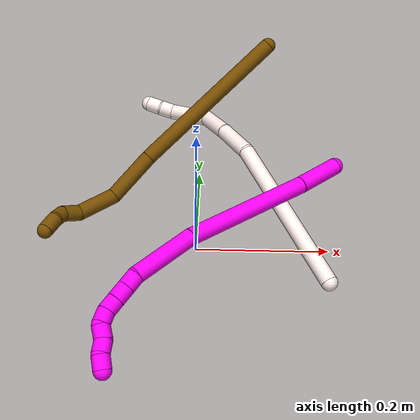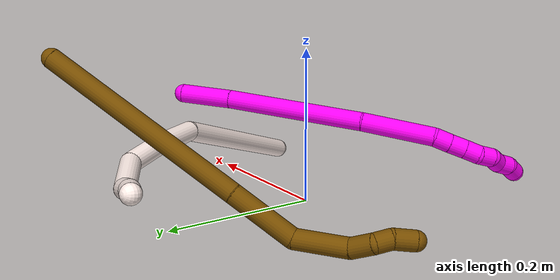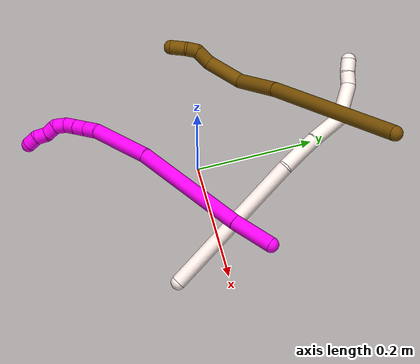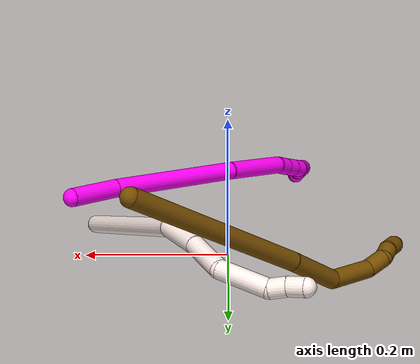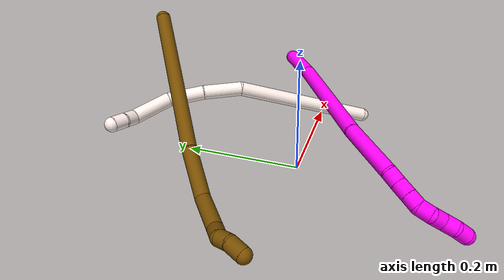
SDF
<sdf version="1.7">
 <world name="default">
  <model name="photoneo_s_sensor">
   <static>1</static>
   <pose>0 0 2 1.57079 1.57079 3.14159</pose>
   <link name="link">
    <inertial><mass>0.1</mass></inertial>
    <sensor name="sensor" type="depth">
     <update_rate>30</update_rate>
     <camera>
      <horizontal_fov>1.22</horizontal_fov>
      <image><width>1920</width><height>1200</height><format>B8G8R8</format></image>
      <clip><near>0.1</near><far>4</far></clip>
      <depth_camera><output>points</output></depth_camera>
     </camera>
     <plugin name="camera_plugin" filename="libgazebo_ros_depth_camera.so">
      <baseline>0.2</baseline>
      <alwaysOn>1</alwaysOn>
      <updateRate>0.0</updateRate>
      <cameraName>camera_ir</cameraName>
      <imageTopicName>/camera/color/image_raw</imageTopicName>
      <cameraInfoTopicName>/camera/color/camera_info</cameraInfoTopicName>
      <depthImageTopicName>/camera/depth/image_raw</depthImageTopicName>
      <depthImageCameraInfoTopicName>/camera/depth/camera_info</depthImageCameraInfoTopicName>
      <pointCloudTopicName>/camera/depth/points</pointCloudTopicName>
      <frameName>fr_optical</frameName>
      <pointCloudCutoff>0.1</pointCloudCutoff>
      <pointCloudCutoffMax>2.0</pointCloudCutoffMax>
      <distortionK1>0</distortionK1>
      <distortionK2>0</distortionK2>
      <distortionK3>0</distortionK3>
      <distortionT1>0</distortionT1>
      <distortionT2>0</distortionT2>
      <CxPrime>0</CxPrime>
      <Cx>0</Cx>
      <Cy>0</Cy>
      <focalLength>0</focalLength>
      <hackBaseline>0</hackBaseline>
     </plugin>
    </sensor>
   </link>
  </model>
  <model name="bin">
   <static>1</static>
   <link name="bottom">
    <collision name="collision-bottom">
     <pose>0 0 -0.01 0 -0 0</pose>
     <geometry><box><size>0.8 0.6 0.02</size></box></geometry>
     <surface>
      <friction><ode><mu>100</mu><mu2>100</mu2></ode></friction>
      <contact><collide_bitmask>65535</collide_bitmask></contact>
     </surface>
    </collision>
   </link>
   <link name="west_wall">
    <collision name="collision-west_wall">
     <pose>-0.41 0 0.1 0 -0 0</pose>
     <geometry><box><size>0.02 0.6 0.2</size></box></geometry>
     <surface>
      <friction><ode><mu>100</mu><mu2>100</mu2></ode></friction>
      <contact><collide_bitmask>65535</collide_bitmask></contact>
     </surface>
    </collision>
   </link>
   <link name="east_wall">
    <collision name="collision-east_wall">
     <pose>0.41 0 0.1 0 -0 0</pose>
     <geometry><box><size>0.02 0.6 0.2</size></box></geometry>
     <surface>
      <friction><ode><mu>100</mu><mu2>100</mu2></ode></friction>
      <contact><collide_bitmask>65535</collide_bitmask></contact>
     </surface>
    </collision>
   </link>
   <link name="south_wall">
    <collision name="collision-south_wall">
     <pose>0 -0.31 0.1 0 -0 0</pose>
     <geometry><box><size>0.8 0.02 0.2</size></box></geometry>
     <surface>
      <friction><ode><mu>100</mu><mu2>100</mu2></ode></friction>
      <contact><collide_bitmask>65535</collide_bitmask></contact>
     </surface>
    </collision>
   </link>
   <link name="north_wall">
    <collision name="collision-north_wall">
     <pose>0 0.31 0.1 0 -0 0</pose>
     <geometry><box><size>0.8 0.02 0.2</size></box></geometry>
     <surface>
      <friction><ode><mu>100</mu><mu2>100</mu2></ode></friction>
      <contact><collide_bitmask>65535</collide_bitmask></contact>
     </surface>
    </collision>
   </link>
  </model>
  <model name="10">
   <static>0</static>
   <link name="10">
    <collision name="collision-cylinder-e_1_1_4">
     <pose>-0.028111 -0.015146 -0.013805 2.3099 -0.940873 -1.71143</pose>
     <geometry><cylinder><radius>0.0125</radius><length>0.069576</length></cylinder></geometry>
     <surface>
      <friction><ode><mu>1.16</mu><mu2>1.16</mu2><slip1>0</slip1><slip2>0</slip2></ode></friction>
      <contact><ode><kp>1e+06</kp><kd>1</kd><max_vel>0</max_vel><min_depth>0.001</min_depth></ode></contact>
     </surface>
    </collision>
    <visual name="visual-cylinder-e_1_1_4">
     <pose>-0.028111 -0.015146 -0.013805 2.3099 -0.940873 -1.71143</pose>
     <geometry><cylinder><radius>0.0125</radius><length>0.069576</length></cylinder></geometry>
     <material><ambient>1 0 0.964706 1</ambient></material>
    </visual>
    <collision name="collision-cylinder-e_2_4_5">
     <pose>-0.138222 -0.066137 -0.060886 2.31904 -1.03297 -1.83176</pose>
     <geometry><cylinder><radius>0.0125</radius><length>0.190958</length></cylinder></geometry>
     <surface>
      <friction><ode><mu>1.16</mu><mu2>1.16</mu2><slip1>0</slip1><slip2>0</slip2></ode></friction>
      <contact><ode><kp>1e+06</kp><kd>1</kd><max_vel>0</max_vel><min_depth>0.001</min_depth></ode></contact>
     </surface>
    </collision>
    <visual name="visual-cylinder-e_2_4_5">
     <pose>-0.138222 -0.066137 -0.060886 2.31904 -1.03297 -1.83176</pose>
     <geometry><cylinder><radius>0.0125</radius><length>0.190958</length></cylinder></geometry>
     <material><ambient>1 0 0.964706 1</ambient></material>
    </visual>
    <collision name="collision-cylinder-e_3_5_6">
     <pose>-0.25803 -0.120661 -0.117835 2.47358 -0.89755 -1.89273</pose>
     <geometry><cylinder><radius>0.0125</radius><length>0.09672</length></cylinder></geometry>
     <surface>
      <friction><ode><mu>1.16</mu><mu2>1.16</mu2><slip1>0</slip1><slip2>0</slip2></ode></friction>
      <contact><ode><kp>1e+06</kp><kd>1</kd><max_vel>0</max_vel><min_depth>0.001</min_depth></ode></contact>
     </surface>
    </collision>
    <visual name="visual-cylinder-e_3_5_6">
     <pose>-0.25803 -0.120661 -0.117835 2.47358 -0.89755 -1.89273</pose>
     <geometry><cylinder><radius>0.0125</radius><length>0.09672</length></cylinder></geometry>
     <material><ambient>1 0 0.964706 1</ambient></material>
    </visual>
    <collision name="collision-cylinder-e_4_6_7">
     <pose>-0.3029 -0.142056 -0.149018 2.79453 -0.724007 -2.27454</pose>
     <geometry><cylinder><radius>0.0125</radius><length>0.021323</length></cylinder></geometry>
     <surface>
      <friction><ode><mu>1.16</mu><mu2>1.16</mu2><slip1>0</slip1><slip2>0</slip2></ode></friction>
      <contact><ode><kp>1e+06</kp><kd>1</kd><max_vel>0</max_vel><min_depth>0.001</min_depth></ode></contact>
     </surface>
    </collision>
    <visual name="visual-cylinder-e_4_6_7">
     <pose>-0.3029 -0.142056 -0.149018 2.79453 -0.724007 -2.27454</pose>
     <geometry><cylinder><radius>0.0125</radius><length>0.021323</length></cylinder></geometry>
     <material><ambient>1 0 0.964706 1</ambient></material>
    </visual>
    <collision name="collision-cylinder-e_5_7_8">
     <pose>-0.317003 -0.147809 -0.163941 2.75287 -0.721101 -2.17925</pose>
     <geometry><cylinder><radius>0.0125</radius><length>0.021329</length></cylinder></geometry>
     <surface>
      <friction><ode><mu>1.16</mu><mu2>1.16</mu2><slip1>0</slip1><slip2>0</slip2></ode></friction>
      <contact><ode><kp>1e+06</kp><kd>1</kd><max_vel>0</max_vel><min_depth>0.001</min_depth></ode></contact>
     </surface>
    </collision>
    <visual name="visual-cylinder-e_5_7_8">
     <pose>-0.317003 -0.147809 -0.163941 2.75287 -0.721101 -2.17925</pose>
     <geometry><cylinder><radius>0.0125</radius><length>0.021329</length></cylinder></geometry>
     <material><ambient>1 0 0.964706 1</ambient></material>
    </visual>
    <collision name="collision-cylinder-e_6_8_9">
     <pose>-0.33063 -0.153542 -0.178409 2.77636 -0.717169 -2.22594</pose>
     <geometry><cylinder><radius>0.0125</radius><length>0.020043</length></cylinder></geometry>
     <surface>
      <friction><ode><mu>1.16</mu><mu2>1.16</mu2><slip1>0</slip1><slip2>0</slip2></ode></friction>
      <contact><ode><kp>1e+06</kp><kd>1</kd><max_vel>0</max_vel><min_depth>0.001</min_depth></ode></contact>
     </surface>
    </collision>
    <visual name="visual-cylinder-e_6_8_9">
     <pose>-0.33063 -0.153542 -0.178409 2.77636 -0.717169 -2.22594</pose>
     <geometry><cylinder><radius>0.0125</radius><length>0.020043</length></cylinder></geometry>
     <material><ambient>1 0 0.964706 1</ambient></material>
    </visual>
    <collision name="collision-cylinder-e_7_9_10">
     <pose>-0.340739 -0.160681 -0.193731 2.64866 -0.358974 -1.24962</pose>
     <geometry><cylinder><radius>0.0125</radius><length>0.020047</length></cylinder></geometry>
     <surface>
      <friction><ode><mu>1.16</mu><mu2>1.16</mu2><slip1>0</slip1><slip2>0</slip2></ode></friction>
      <contact><ode><kp>1e+06</kp><kd>1</kd><max_vel>0</max_vel><min_depth>0.001</min_depth></ode></contact>
     </surface>
    </collision>
    <visual name="visual-cylinder-e_7_9_10">
     <pose>-0.340739 -0.160681 -0.193731 2.64866 -0.358974 -1.24962</pose>
     <geometry><cylinder><radius>0.0125</radius><length>0.020047</length></cylinder></geometry>
     <material><ambient>1 0 0.964706 1</ambient></material>
    </visual>
    <collision name="collision-cylinder-e_8_10_11">
     <pose>-0.343001 -0.166483 -0.211826 3.00394 0.126253 1.48418</pose>
     <geometry><cylinder><radius>0.0125</radius><length>0.020002</length></cylinder></geometry>
     <surface>
      <friction><ode><mu>1.16</mu><mu2>1.16</mu2><slip1>0</slip1><slip2>0</slip2></ode></friction>
      <contact><ode><kp>1e+06</kp><kd>1</kd><max_vel>0</max_vel><min_depth>0.001</min_depth></ode></contact>
     </surface>
    </collision>
    <visual name="visual-cylinder-e_8_10_11">
     <pose>-0.343001 -0.166483 -0.211826 3.00394 0.126253 1.48418</pose>
     <geometry><cylinder><radius>0.0125</radius><length>0.020002</length></cylinder></geometry>
     <material><ambient>1 0 0.964706 1</ambient></material>
    </visual>
    <collision name="collision-cylinder-e_9_11_12">
     <pose>-0.343803 -0.171923 -0.230549 2.71168 -0.207617 -0.890463</pose>
     <geometry><cylinder><radius>0.0125</radius><length>0.020001</length></cylinder></geometry>
     <surface>
      <friction><ode><mu>1.16</mu><mu2>1.16</mu2><slip1>0</slip1><slip2>0</slip2></ode></friction>
      <contact><ode><kp>1e+06</kp><kd>1</kd><max_vel>0</max_vel><min_depth>0.001</min_depth></ode></contact>
     </surface>
    </collision>
    <visual name="visual-cylinder-e_9_11_12">
     <pose>-0.343803 -0.171923 -0.230549 2.71168 -0.207617 -0.890463</pose>
     <geometry><cylinder><radius>0.0125</radius><length>0.020001</length></cylinder></geometry>
     <material><ambient>1 0 0.964706 1</ambient></material>
    </visual>
    <collision name="collision-cylinder-e_10_12_2">
     <pose>-0.345312 -0.176977 -0.249381 3.04374 0.05525 1.02751</pose>
     <geometry><cylinder><radius>0.0125</radius><length>0.02</length></cylinder></geometry>
     <surface>
      <friction><ode><mu>1.16</mu><mu2>1.16</mu2><slip1>0</slip1><slip2>0</slip2></ode></friction>
      <contact><ode><kp>1e+06</kp><kd>1</kd><max_vel>0</max_vel><min_depth>0.001</min_depth></ode></contact>
     </surface>
    </collision>
    <visual name="visual-cylinder-e_10_12_2">
     <pose>-0.345312 -0.176977 -0.249381 3.04374 0.05525 1.02751</pose>
     <geometry><cylinder><radius>0.0125</radius><length>0.02</length></cylinder></geometry>
     <material><ambient>1 0 0.964706 1</ambient></material>
    </visual>
    <collision name="collision-sphere-2">
     <pose>-0.34476 -0.177953 -0.259318 0 -0 0</pose>
     <geometry><sphere><radius>0.0125</radius></sphere></geometry>
     <surface>
      <friction><ode><mu>1.16</mu><mu2>1.16</mu2><slip1>0</slip1><slip2>0</slip2></ode></friction>
      <contact><ode><kp>1e+06</kp><kd>1</kd><max_vel>0</max_vel><min_depth>0.001</min_depth></ode></contact>
     </surface>
    </collision>
    <visual name="visual-sphere-2">
     <pose>-0.34476 -0.177953 -0.259318 0 -0 0</pose>
     <geometry><sphere><radius>0.0125</radius></sphere></geometry>
     <material><ambient>1 0 0.964706 1</ambient></material>
    </visual>
    <collision name="collision-sphere-12">
     <pose>-0.345864 -0.176002 -0.239444 0 -0 0</pose>
     <geometry><sphere><radius>0.0125</radius></sphere></geometry>
     <surface>
      <friction><ode><mu>1.16</mu><mu2>1.16</mu2><slip1>0</slip1><slip2>0</slip2></ode></friction>
      <contact><ode><kp>1e+06</kp><kd>1</kd><max_vel>0</max_vel><min_depth>0.001</min_depth></ode></contact>
     </surface>
    </collision>
    <visual name="visual-sphere-12">
     <pose>-0.345864 -0.176002 -0.239444 0 -0 0</pose>
     <geometry><sphere><radius>0.0125</radius></sphere></geometry>
     <material><ambient>1 0 0.964706 1</ambient></material>
    </visual>
    <collision name="collision-sphere-11">
     <pose>-0.341741 -0.167845 -0.221654 0 -0 0</pose>
     <geometry><sphere><radius>0.0125</radius></sphere></geometry>
     <surface>
      <friction><ode><mu>1.16</mu><mu2>1.16</mu2><slip1>0</slip1><slip2>0</slip2></ode></friction>
      <contact><ode><kp>1e+06</kp><kd>1</kd><max_vel>0</max_vel><min_depth>0.001</min_depth></ode></contact>
     </surface>
    </collision>
    <visual name="visual-sphere-11">
     <pose>-0.341741 -0.167845 -0.221654 0 -0 0</pose>
     <geometry><sphere><radius>0.0125</radius></sphere></geometry>
     <material><ambient>1 0 0.964706 1</ambient></material>
    </visual>
    <collision name="collision-sphere-10">
     <pose>-0.34426 -0.165122 -0.201998 0 -0 0</pose>
     <geometry><sphere><radius>0.0125</radius></sphere></geometry>
     <surface>
      <friction><ode><mu>1.16</mu><mu2>1.16</mu2><slip1>0</slip1><slip2>0</slip2></ode></friction>
      <contact><ode><kp>1e+06</kp><kd>1</kd><max_vel>0</max_vel><min_depth>0.001</min_depth></ode></contact>
     </surface>
    </collision>
    <visual name="visual-sphere-10">
     <pose>-0.34426 -0.165122 -0.201998 0 -0 0</pose>
     <geometry><sphere><radius>0.0125</radius></sphere></geometry>
     <material><ambient>1 0 0.964706 1</ambient></material>
    </visual>
    <collision name="collision-sphere-9">
     <pose>-0.337217 -0.15624 -0.185463 0 -0 0</pose>
     <geometry><sphere><radius>0.0125</radius></sphere></geometry>
     <surface>
      <friction><ode><mu>1.16</mu><mu2>1.16</mu2><slip1>0</slip1><slip2>0</slip2></ode></friction>
      <contact><ode><kp>1e+06</kp><kd>1</kd><max_vel>0</max_vel><min_depth>0.001</min_depth></ode></contact>
     </surface>
    </collision>
    <visual name="visual-sphere-9">
     <pose>-0.337217 -0.15624 -0.185463 0 -0 0</pose>
     <geometry><sphere><radius>0.0125</radius></sphere></geometry>
     <material><ambient>1 0 0.964706 1</ambient></material>
    </visual>
    <collision name="collision-sphere-4">
     <pose>-0.056222 -0.030291 -0.027609 0 -0 0</pose>
     <geometry><sphere><radius>0.0125</radius></sphere></geometry>
     <surface>
      <friction><ode><mu>1.16</mu><mu2>1.16</mu2><slip1>0</slip1><slip2>0</slip2></ode></friction>
      <contact><ode><kp>1e+06</kp><kd>1</kd><max_vel>0</max_vel><min_depth>0.001</min_depth></ode></contact>
     </surface>
    </collision>
    <visual name="visual-sphere-4">
     <pose>-0.056222 -0.030291 -0.027609 0 -0 0</pose>
     <geometry><sphere><radius>0.0125</radius></sphere></geometry>
     <material><ambient>1 0 0.964706 1</ambient></material>
    </visual>
    <collision name="collision-sphere-1">
     <geometry><sphere><radius>0.0125</radius></sphere></geometry>
     <surface>
      <friction><ode><mu>1.16</mu><mu2>1.16</mu2><slip1>0</slip1><slip2>0</slip2></ode></friction>
      <contact><ode><kp>1e+06</kp><kd>1</kd><max_vel>0</max_vel><min_depth>0.001</min_depth></ode></contact>
     </surface>
    </collision>
    <visual name="visual-sphere-1">
     <geometry><sphere><radius>0.0125</radius></sphere></geometry>
     <material><ambient>1 0 0.964706 1</ambient></material>
    </visual>
    <collision name="collision-sphere-8">
     <pose>-0.324044 -0.150844 -0.171354 0 -0 0</pose>
     <geometry><sphere><radius>0.0125</radius></sphere></geometry>
     <surface>
      <friction><ode><mu>1.16</mu><mu2>1.16</mu2><slip1>0</slip1><slip2>0</slip2></ode></friction>
      <contact><ode><kp>1e+06</kp><kd>1</kd><max_vel>0</max_vel><min_depth>0.001</min_depth></ode></contact>
     </surface>
    </collision>
    <visual name="visual-sphere-8">
     <pose>-0.324044 -0.150844 -0.171354 0 -0 0</pose>
     <geometry><sphere><radius>0.0125</radius></sphere></geometry>
     <material><ambient>1 0 0.964706 1</ambient></material>
    </visual>
    <collision name="collision-sphere-5">
     <pose>-0.220222 -0.101983 -0.094163 0 -0 0</pose>
     <geometry><sphere><radius>0.0125</radius></sphere></geometry>
     <surface>
      <friction><ode><mu>1.16</mu><mu2>1.16</mu2><slip1>0</slip1><slip2>0</slip2></ode></friction>
      <contact><ode><kp>1e+06</kp><kd>1</kd><max_vel>0</max_vel><min_depth>0.001</min_depth></ode></contact>
     </surface>
    </collision>
    <visual name="visual-sphere-5">
     <pose>-0.220222 -0.101983 -0.094163 0 -0 0</pose>
     <geometry><sphere><radius>0.0125</radius></sphere></geometry>
     <material><ambient>1 0 0.964706 1</ambient></material>
    </visual>
    <collision name="collision-sphere-6">
     <pose>-0.295838 -0.139339 -0.141507 0 -0 0</pose>
     <geometry><sphere><radius>0.0125</radius></sphere></geometry>
     <surface>
      <friction><ode><mu>1.16</mu><mu2>1.16</mu2><slip1>0</slip1><slip2>0</slip2></ode></friction>
      <contact><ode><kp>1e+06</kp><kd>1</kd><max_vel>0</max_vel><min_depth>0.001</min_depth></ode></contact>
     </surface>
    </collision>
    <visual name="visual-sphere-6">
     <pose>-0.295838 -0.139339 -0.141507 0 -0 0</pose>
     <geometry><sphere><radius>0.0125</radius></sphere></geometry>
     <material><ambient>1 0 0.964706 1</ambient></material>
    </visual>
    <collision name="collision-sphere-7">
     <pose>-0.309962 -0.144773 -0.156529 0 -0 0</pose>
     <geometry><sphere><radius>0.0125</radius></sphere></geometry>
     <surface>
      <friction><ode><mu>1.16</mu><mu2>1.16</mu2><slip1>0</slip1><slip2>0</slip2></ode></friction>
      <contact><ode><kp>1e+06</kp><kd>1</kd><max_vel>0</max_vel><min_depth>0.001</min_depth></ode></contact>
     </surface>
    </collision>
    <visual name="visual-sphere-7">
     <pose>-0.309962 -0.144773 -0.156529 0 -0 0</pose>
     <geometry><sphere><radius>0.0125</radius></sphere></geometry>
     <material><ambient>1 0 0.964706 1</ambient></material>
    </visual>
    <inertial>
     <pose>-0.201257 -0.096284 -0.103908 0 -0 0</pose>
     <mass>0.5</mass>
     <inertia>
      <ixx>-0.000481</ixx>
      <ixy>0</ixy>
      <ixz>0</ixz>
      <iyy>0.000167</iyy>
      <iyz>0</iyz>
      <izz>0.000842</izz>
     </inertia>
    </inertial>
   </link>
   <pose>0.205876 0.064637 0.113059 -0.81281 -0.127546 0.063977</pose>
  </model>
  <model name="11">
   <static>0</static>
   <link name="11">
    <collision name="collision-cylinder-e_1_1_4">
     <pose>-0.023764 -0.037598 0.119591 0.304607 -0.187342 -0.028838</pose>
     <geometry><cylinder><radius>0.0125</radius><length>0.255189</length></cylinder></geometry>
     <surface>
      <friction><ode><mu>1.16</mu><mu2>1.16</mu2><slip1>0</slip1><slip2>0</slip2></ode></friction>
      <contact><ode><kp>1e+06</kp><kd>1</kd><max_vel>0</max_vel><min_depth>0.001</min_depth></ode></contact>
     </surface>
    </collision>
    <visual name="visual-cylinder-e_1_1_4">
     <pose>-0.023764 -0.037598 0.119591 0.304607 -0.187342 -0.028838</pose>
     <geometry><cylinder><radius>0.0125</radius><length>0.255189</length></cylinder></geometry>
     <material><ambient>1 0.933333 0.909804 1</ambient></material>
    </visual>
    <collision name="collision-cylinder-e_2_4_5">
     <pose>-0.059461 -0.075807 0.270654 0.019398 -0.362338 -0.003553</pose>
     <geometry><cylinder><radius>0.0125</radius><length>0.067327</length></cylinder></geometry>
     <surface>
      <friction><ode><mu>1.16</mu><mu2>1.16</mu2><slip1>0</slip1><slip2>0</slip2></ode></friction>
      <contact><ode><kp>1e+06</kp><kd>1</kd><max_vel>0</max_vel><min_depth>0.001</min_depth></ode></contact>
     </surface>
    </collision>
    <visual name="visual-cylinder-e_2_4_5">
     <pose>-0.059461 -0.075807 0.270654 0.019398 -0.362338 -0.003553</pose>
     <geometry><cylinder><radius>0.0125</radius><length>0.067327</length></cylinder></geometry>
     <material><ambient>1 0.933333 0.909804 1</ambient></material>
    </visual>
    <collision name="collision-cylinder-e_3_5_6">
     <pose>-0.082852 -0.072718 0.330935 -0.12771 -0.375771 0.024313</pose>
     <geometry><cylinder><radius>0.0125</radius><length>0.062449</length></cylinder></geometry>
     <surface>
      <friction><ode><mu>1.16</mu><mu2>1.16</mu2><slip1>0</slip1><slip2>0</slip2></ode></friction>
      <contact><ode><kp>1e+06</kp><kd>1</kd><max_vel>0</max_vel><min_depth>0.001</min_depth></ode></contact>
     </surface>
    </collision>
    <visual name="visual-cylinder-e_3_5_6">
     <pose>-0.082852 -0.072718 0.330935 -0.12771 -0.375771 0.024313</pose>
     <geometry><cylinder><radius>0.0125</radius><length>0.062449</length></cylinder></geometry>
     <material><ambient>1 0.933333 0.909804 1</ambient></material>
    </visual>
    <collision name="collision-cylinder-e_4_6_7">
     <pose>-0.120713 -0.071542 0.382165 0.112073 -0.86365 -0.051689</pose>
     <geometry><cylinder><radius>0.0125</radius><length>0.069458</length></cylinder></geometry>
     <surface>
      <friction><ode><mu>1.16</mu><mu2>1.16</mu2><slip1>0</slip1><slip2>0</slip2></ode></friction>
      <contact><ode><kp>1e+06</kp><kd>1</kd><max_vel>0</max_vel><min_depth>0.001</min_depth></ode></contact>
     </surface>
    </collision>
    <visual name="visual-cylinder-e_4_6_7">
     <pose>-0.120713 -0.071542 0.382165 0.112073 -0.86365 -0.051689</pose>
     <geometry><cylinder><radius>0.0125</radius><length>0.069458</length></cylinder></geometry>
     <material><ambient>1 0.933333 0.909804 1</ambient></material>
    </visual>
    <collision name="collision-cylinder-e_5_7_8">
     <pose>-0.155773 -0.079775 0.40924 0.886879 -0.86582 -0.432176</pose>
     <geometry><cylinder><radius>0.0125</radius><length>0.022735</length></cylinder></geometry>
     <surface>
      <friction><ode><mu>1.16</mu><mu2>1.16</mu2><slip1>0</slip1><slip2>0</slip2></ode></friction>
      <contact><ode><kp>1e+06</kp><kd>1</kd><max_vel>0</max_vel><min_depth>0.001</min_depth></ode></contact>
     </surface>
    </collision>
    <visual name="visual-cylinder-e_5_7_8">
     <pose>-0.155773 -0.079775 0.40924 0.886879 -0.86582 -0.432176</pose>
     <geometry><cylinder><radius>0.0125</radius><length>0.022735</length></cylinder></geometry>
     <material><ambient>1 0.933333 0.909804 1</ambient></material>
    </visual>
    <collision name="collision-cylinder-e_6_8_2">
     <pose>-0.172942 -0.089686 0.420244 0.584516 -0.841003 -0.26748</pose>
     <geometry><cylinder><radius>0.0125</radius><length>0.022842</length></cylinder></geometry>
     <surface>
      <friction><ode><mu>1.16</mu><mu2>1.16</mu2><slip1>0</slip1><slip2>0</slip2></ode></friction>
      <contact><ode><kp>1e+06</kp><kd>1</kd><max_vel>0</max_vel><min_depth>0.001</min_depth></ode></contact>
     </surface>
    </collision>
    <visual name="visual-cylinder-e_6_8_2">
     <pose>-0.172942 -0.089686 0.420244 0.584516 -0.841003 -0.26748</pose>
     <geometry><cylinder><radius>0.0125</radius><length>0.022842</length></cylinder></geometry>
     <material><ambient>1 0.933333 0.909804 1</ambient></material>
    </visual>
    <collision name="collision-sphere-2">
     <pose>-0.181455 -0.093888 0.426595 0 -0 0</pose>
     <geometry><sphere><radius>0.0125</radius></sphere></geometry>
     <surface>
      <friction><ode><mu>1.16</mu><mu2>1.16</mu2><slip1>0</slip1><slip2>0</slip2></ode></friction>
      <contact><ode><kp>1e+06</kp><kd>1</kd><max_vel>0</max_vel><min_depth>0.001</min_depth></ode></contact>
     </surface>
    </collision>
    <visual name="visual-sphere-2">
     <pose>-0.181455 -0.093888 0.426595 0 -0 0</pose>
     <geometry><sphere><radius>0.0125</radius></sphere></geometry>
     <material><ambient>1 0.933333 0.909804 1</ambient></material>
    </visual>
    <collision name="collision-sphere-4">
     <pose>-0.047528 -0.075197 0.239182 0 -0 0</pose>
     <geometry><sphere><radius>0.0125</radius></sphere></geometry>
     <surface>
      <friction><ode><mu>1.16</mu><mu2>1.16</mu2><slip1>0</slip1><slip2>0</slip2></ode></friction>
      <contact><ode><kp>1e+06</kp><kd>1</kd><max_vel>0</max_vel><min_depth>0.001</min_depth></ode></contact>
     </surface>
    </collision>
    <visual name="visual-sphere-4">
     <pose>-0.047528 -0.075197 0.239182 0 -0 0</pose>
     <geometry><sphere><radius>0.0125</radius></sphere></geometry>
     <material><ambient>1 0.933333 0.909804 1</ambient></material>
    </visual>
    <collision name="collision-sphere-1">
     <geometry><sphere><radius>0.0125</radius></sphere></geometry>
     <surface>
      <friction><ode><mu>1.16</mu><mu2>1.16</mu2><slip1>0</slip1><slip2>0</slip2></ode></friction>
      <contact><ode><kp>1e+06</kp><kd>1</kd><max_vel>0</max_vel><min_depth>0.001</min_depth></ode></contact>
     </surface>
    </collision>
    <visual name="visual-sphere-1">
     <geometry><sphere><radius>0.0125</radius></sphere></geometry>
     <material><ambient>1 0.933333 0.909804 1</ambient></material>
    </visual>
    <collision name="collision-sphere-8">
     <pose>-0.16443 -0.085485 0.413894 0 -0 0</pose>
     <geometry><sphere><radius>0.0125</radius></sphere></geometry>
     <surface>
      <friction><ode><mu>1.16</mu><mu2>1.16</mu2><slip1>0</slip1><slip2>0</slip2></ode></friction>
      <contact><ode><kp>1e+06</kp><kd>1</kd><max_vel>0</max_vel><min_depth>0.001</min_depth></ode></contact>
     </surface>
    </collision>
    <visual name="visual-sphere-8">
     <pose>-0.16443 -0.085485 0.413894 0 -0 0</pose>
     <geometry><sphere><radius>0.0125</radius></sphere></geometry>
     <material><ambient>1 0.933333 0.909804 1</ambient></material>
    </visual>
    <collision name="collision-sphere-5">
     <pose>-0.071393 -0.076418 0.302125 0 -0 0</pose>
     <geometry><sphere><radius>0.0125</radius></sphere></geometry>
     <surface>
      <friction><ode><mu>1.16</mu><mu2>1.16</mu2><slip1>0</slip1><slip2>0</slip2></ode></friction>
      <contact><ode><kp>1e+06</kp><kd>1</kd><max_vel>0</max_vel><min_depth>0.001</min_depth></ode></contact>
     </surface>
    </collision>
    <visual name="visual-sphere-5">
     <pose>-0.071393 -0.076418 0.302125 0 -0 0</pose>
     <geometry><sphere><radius>0.0125</radius></sphere></geometry>
     <material><ambient>1 0.933333 0.909804 1</ambient></material>
    </visual>
    <collision name="collision-sphere-6">
     <pose>-0.094312 -0.069019 0.359744 0 -0 0</pose>
     <geometry><sphere><radius>0.0125</radius></sphere></geometry>
     <surface>
      <friction><ode><mu>1.16</mu><mu2>1.16</mu2><slip1>0</slip1><slip2>0</slip2></ode></friction>
      <contact><ode><kp>1e+06</kp><kd>1</kd><max_vel>0</max_vel><min_depth>0.001</min_depth></ode></contact>
     </surface>
    </collision>
    <visual name="visual-sphere-6">
     <pose>-0.094312 -0.069019 0.359744 0 -0 0</pose>
     <geometry><sphere><radius>0.0125</radius></sphere></geometry>
     <material><ambient>1 0.933333 0.909804 1</ambient></material>
    </visual>
    <collision name="collision-sphere-7">
     <pose>-0.147115 -0.074066 0.404586 0 -0 0</pose>
     <geometry><sphere><radius>0.0125</radius></sphere></geometry>
     <surface>
      <friction><ode><mu>1.16</mu><mu2>1.16</mu2><slip1>0</slip1><slip2>0</slip2></ode></friction>
      <contact><ode><kp>1e+06</kp><kd>1</kd><max_vel>0</max_vel><min_depth>0.001</min_depth></ode></contact>
     </surface>
    </collision>
    <visual name="visual-sphere-7">
     <pose>-0.147115 -0.074066 0.404586 0 -0 0</pose>
     <geometry><sphere><radius>0.0125</radius></sphere></geometry>
     <material><ambient>1 0.933333 0.909804 1</ambient></material>
    </visual>
    <inertial>
     <pose>-0.062236 -0.056142 0.22971 0 -0 0</pose>
     <mass>0.5</mass>
     <inertia>
      <ixx>0.001384</ixx>
      <ixy>0</ixy>
      <ixz>0</ixz>
      <iyy>0.001368</iyy>
      <iyz>0</iyz>
      <izz>0.00075</izz>
     </inertia>
    </inertial>
   </link>
   <pose>0.192742 -0.083407 0.012489 -1.41952 -0.387928 0.14299</pose>
  </model>
  <model name="12">
   <static>0</static>
   <link name="12">
    <collision name="collision-cylinder-e_1_1_4">
     <pose>-0.025498 -0.103181 0.084339 0.88554 -0.189052 -0.08985</pose>
     <geometry><cylinder><radius>0.0125</radius><length>0.271363</length></cylinder></geometry>
     <surface>
      <friction><ode><mu>1.16</mu><mu2>1.16</mu2><slip1>0</slip1><slip2>0</slip2></ode></friction>
      <contact><ode><kp>1e+06</kp><kd>1</kd><max_vel>0</max_vel><min_depth>0.001</min_depth></ode></contact>
     </surface>
    </collision>
    <visual name="visual-cylinder-e_1_1_4">
     <pose>-0.025498 -0.103181 0.084339 0.88554 -0.189052 -0.08985</pose>
     <geometry><cylinder><radius>0.0125</radius><length>0.271363</length></cylinder></geometry>
     <material><ambient>0.466667 0.301961 0 1</ambient></material>
    </visual>
    <collision name="collision-cylinder-e_2_4_5">
     <pose>-0.057832 -0.240852 0.192561 0.965159 -0.161517 -0.084751</pose>
     <geometry><cylinder><radius>0.0125</radius><length>0.085011</length></cylinder></geometry>
     <surface>
      <friction><ode><mu>1.16</mu><mu2>1.16</mu2><slip1>0</slip1><slip2>0</slip2></ode></friction>
      <contact><ode><kp>1e+06</kp><kd>1</kd><max_vel>0</max_vel><min_depth>0.001</min_depth></ode></contact>
     </surface>
    </collision>
    <visual name="visual-cylinder-e_2_4_5">
     <pose>-0.057832 -0.240852 0.192561 0.965159 -0.161517 -0.084751</pose>
     <geometry><cylinder><radius>0.0125</radius><length>0.085011</length></cylinder></geometry>
     <material><ambient>0.466667 0.301961 0 1</ambient></material>
    </visual>
    <collision name="collision-cylinder-e_3_5_6">
     <pose>-0.058538 -0.293214 0.243831 0.578153 0.185287 0.05525</pose>
     <geometry><cylinder><radius>0.0125</radius><length>0.066543</length></cylinder></geometry>
     <surface>
      <friction><ode><mu>1.16</mu><mu2>1.16</mu2><slip1>0</slip1><slip2>0</slip2></ode></friction>
      <contact><ode><kp>1e+06</kp><kd>1</kd><max_vel>0</max_vel><min_depth>0.001</min_depth></ode></contact>
     </surface>
    </collision>
    <visual name="visual-cylinder-e_3_5_6">
     <pose>-0.058538 -0.293214 0.243831 0.578153 0.185287 0.05525</pose>
     <geometry><cylinder><radius>0.0125</radius><length>0.066543</length></cylinder></geometry>
     <material><ambient>0.466667 0.301961 0 1</ambient></material>
    </visual>
    <collision name="collision-cylinder-e_4_6_7">
     <pose>-0.047273 -0.313726 0.284681 0.193754 0.358173 0.035181</pose>
     <geometry><cylinder><radius>0.0125</radius><length>0.029299</length></cylinder></geometry>
     <surface>
      <friction><ode><mu>1.16</mu><mu2>1.16</mu2><slip1>0</slip1><slip2>0</slip2></ode></friction>
      <contact><ode><kp>1e+06</kp><kd>1</kd><max_vel>0</max_vel><min_depth>0.001</min_depth></ode></contact>
     </surface>
    </collision>
    <visual name="visual-cylinder-e_4_6_7">
     <pose>-0.047273 -0.313726 0.284681 0.193754 0.358173 0.035181</pose>
     <geometry><cylinder><radius>0.0125</radius><length>0.029299</length></cylinder></geometry>
     <material><ambient>0.466667 0.301961 0 1</ambient></material>
    </visual>
    <collision name="collision-cylinder-e_5_7_8">
     <pose>-0.035331 -0.321577 0.303907 0.735014 0.719517 0.287617</pose>
     <geometry><cylinder><radius>0.0125</radius><length>0.020656</length></cylinder></geometry>
     <surface>
      <friction><ode><mu>1.16</mu><mu2>1.16</mu2><slip1>0</slip1><slip2>0</slip2></ode></friction>
      <contact><ode><kp>1e+06</kp><kd>1</kd><max_vel>0</max_vel><min_depth>0.001</min_depth></ode></contact>
     </surface>
    </collision>
    <visual name="visual-cylinder-e_5_7_8">
     <pose>-0.035331 -0.321577 0.303907 0.735014 0.719517 0.287617</pose>
     <geometry><cylinder><radius>0.0125</radius><length>0.020656</length></cylinder></geometry>
     <material><ambient>0.466667 0.301961 0 1</ambient></material>
    </visual>
    <collision name="collision-cylinder-e_6_8_2">
     <pose>-0.022848 -0.336824 0.316811 0.952419 0.431833 0.225309</pose>
     <geometry><cylinder><radius>0.0125</radius><length>0.027128</length></cylinder></geometry>
     <surface>
      <friction><ode><mu>1.16</mu><mu2>1.16</mu2><slip1>0</slip1><slip2>0</slip2></ode></friction>
      <contact><ode><kp>1e+06</kp><kd>1</kd><max_vel>0</max_vel><min_depth>0.001</min_depth></ode></contact>
     </surface>
    </collision>
    <visual name="visual-cylinder-e_6_8_2">
     <pose>-0.022848 -0.336824 0.316811 0.952419 0.431833 0.225309</pose>
     <geometry><cylinder><radius>0.0125</radius><length>0.027128</length></cylinder></geometry>
     <material><ambient>0.466667 0.301961 0 1</ambient></material>
    </visual>
    <collision name="collision-sphere-2">
     <pose>-0.017171 -0.346861 0.323952 0 -0 0</pose>
     <geometry><sphere><radius>0.0125</radius></sphere></geometry>
     <surface>
      <friction><ode><mu>1.16</mu><mu2>1.16</mu2><slip1>0</slip1><slip2>0</slip2></ode></friction>
      <contact><ode><kp>1e+06</kp><kd>1</kd><max_vel>0</max_vel><min_depth>0.001</min_depth></ode></contact>
     </surface>
    </collision>
    <visual name="visual-sphere-2">
     <pose>-0.017171 -0.346861 0.323952 0 -0 0</pose>
     <geometry><sphere><radius>0.0125</radius></sphere></geometry>
     <material><ambient>0.466667 0.301961 0 1</ambient></material>
    </visual>
    <collision name="collision-sphere-4">
     <pose>-0.050997 -0.206361 0.168678 0 -0 0</pose>
     <geometry><sphere><radius>0.0125</radius></sphere></geometry>
     <surface>
      <friction><ode><mu>1.16</mu><mu2>1.16</mu2><slip1>0</slip1><slip2>0</slip2></ode></friction>
      <contact><ode><kp>1e+06</kp><kd>1</kd><max_vel>0</max_vel><min_depth>0.001</min_depth></ode></contact>
     </surface>
    </collision>
    <visual name="visual-sphere-4">
     <pose>-0.050997 -0.206361 0.168678 0 -0 0</pose>
     <geometry><sphere><radius>0.0125</radius></sphere></geometry>
     <material><ambient>0.466667 0.301961 0 1</ambient></material>
    </visual>
    <collision name="collision-sphere-1">
     <geometry><sphere><radius>0.0125</radius></sphere></geometry>
     <surface>
      <friction><ode><mu>1.16</mu><mu2>1.16</mu2><slip1>0</slip1><slip2>0</slip2></ode></friction>
      <contact><ode><kp>1e+06</kp><kd>1</kd><max_vel>0</max_vel><min_depth>0.001</min_depth></ode></contact>
     </surface>
    </collision>
    <visual name="visual-sphere-1">
     <geometry><sphere><radius>0.0125</radius></sphere></geometry>
     <material><ambient>0.466667 0.301961 0 1</ambient></material>
    </visual>
    <collision name="collision-sphere-8">
     <pose>-0.028525 -0.326786 0.309669 0 -0 0</pose>
     <geometry><sphere><radius>0.0125</radius></sphere></geometry>
     <surface>
      <friction><ode><mu>1.16</mu><mu2>1.16</mu2><slip1>0</slip1><slip2>0</slip2></ode></friction>
      <contact><ode><kp>1e+06</kp><kd>1</kd><max_vel>0</max_vel><min_depth>0.001</min_depth></ode></contact>
     </surface>
    </collision>
    <visual name="visual-sphere-8">
     <pose>-0.028525 -0.326786 0.309669 0 -0 0</pose>
     <geometry><sphere><radius>0.0125</radius></sphere></geometry>
     <material><ambient>0.466667 0.301961 0 1</ambient></material>
    </visual>
    <collision name="collision-sphere-5">
     <pose>-0.064668 -0.275343 0.216444 0 -0 0</pose>
     <geometry><sphere><radius>0.0125</radius></sphere></geometry>
     <surface>
      <friction><ode><mu>1.16</mu><mu2>1.16</mu2><slip1>0</slip1><slip2>0</slip2></ode></friction>
      <contact><ode><kp>1e+06</kp><kd>1</kd><max_vel>0</max_vel><min_depth>0.001</min_depth></ode></contact>
     </surface>
    </collision>
    <visual name="visual-sphere-5">
     <pose>-0.064668 -0.275343 0.216444 0 -0 0</pose>
     <geometry><sphere><radius>0.0125</radius></sphere></geometry>
     <material><ambient>0.466667 0.301961 0 1</ambient></material>
    </visual>
    <collision name="collision-sphere-6">
     <pose>-0.052409 -0.311084 0.271218 0 -0 0</pose>
     <geometry><sphere><radius>0.0125</radius></sphere></geometry>
     <surface>
      <friction><ode><mu>1.16</mu><mu2>1.16</mu2><slip1>0</slip1><slip2>0</slip2></ode></friction>
      <contact><ode><kp>1e+06</kp><kd>1</kd><max_vel>0</max_vel><min_depth>0.001</min_depth></ode></contact>
     </surface>
    </collision>
    <visual name="visual-sphere-6">
     <pose>-0.052409 -0.311084 0.271218 0 -0 0</pose>
     <geometry><sphere><radius>0.0125</radius></sphere></geometry>
     <material><ambient>0.466667 0.301961 0 1</ambient></material>
    </visual>
    <collision name="collision-sphere-7">
     <pose>-0.042137 -0.316368 0.298145 0 -0 0</pose>
     <geometry><sphere><radius>0.0125</radius></sphere></geometry>
     <surface>
      <friction><ode><mu>1.16</mu><mu2>1.16</mu2><slip1>0</slip1><slip2>0</slip2></ode></friction>
      <contact><ode><kp>1e+06</kp><kd>1</kd><max_vel>0</max_vel><min_depth>0.001</min_depth></ode></contact>
     </surface>
    </collision>
    <visual name="visual-sphere-7">
     <pose>-0.042137 -0.316368 0.298145 0 -0 0</pose>
     <geometry><sphere><radius>0.0125</radius></sphere></geometry>
     <material><ambient>0.466667 0.301961 0 1</ambient></material>
    </visual>
    <inertial>
     <pose>-0.036931 -0.185915 0.157389 0 -0 0</pose>
     <mass>0.5</mass>
     <inertia>
      <ixx>0.001575</ixx>
      <ixy>0</ixy>
      <ixz>0</ixz>
      <iyy>0.000962</iyy>
      <iyz>0</iyz>
      <izz>0.001677</izz>
     </inertia>
    </inertial>
   </link>
   <pose>0.110272 0.28872 0.202236 1.23026 -0.677424 -1.17606</pose>
  </model>
 </world>
</sdf>
